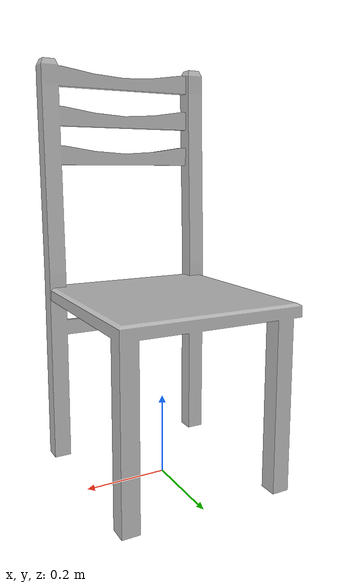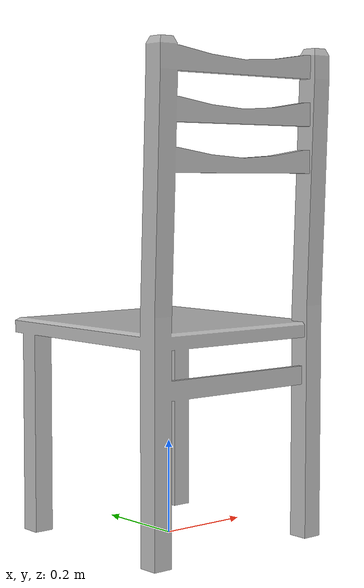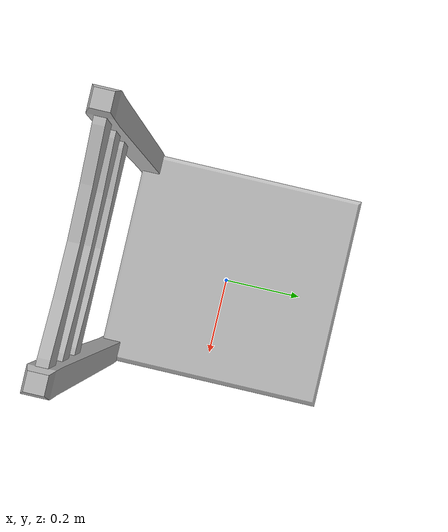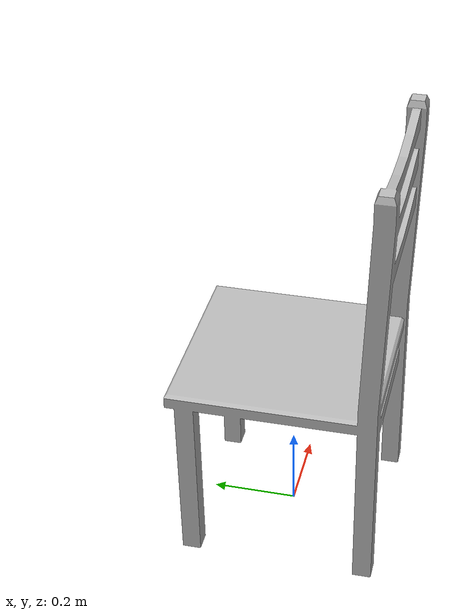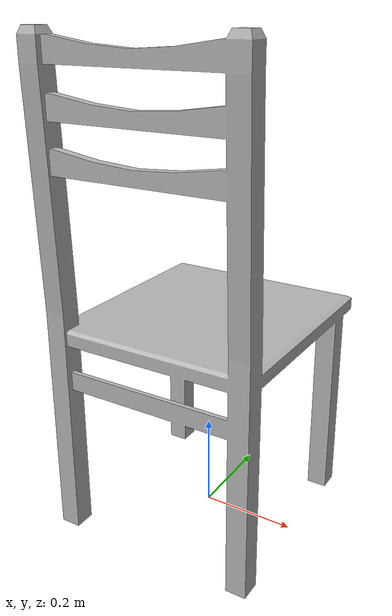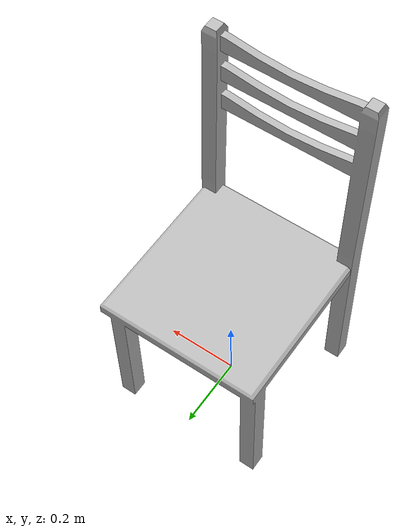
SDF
<?xml version='1.0'?>
<sdf version='1.5'>
    <model name='chair'>
        <static>true</static>
        <link name="curve1">
            <visual name="visual">
                <geometry>
                    <mesh>
                        <uri>model://chair/sdf/chair.dae</uri>
                    </mesh>
                </geometry>
            </visual>
            <collision name="collision">
                <geometry>
                    <mesh>
                        <uri>model://chair/sdf/chair.dae</uri>
                    </mesh>
                </geometry>
            </collision>
        </link>
    </model>
</sdf>
